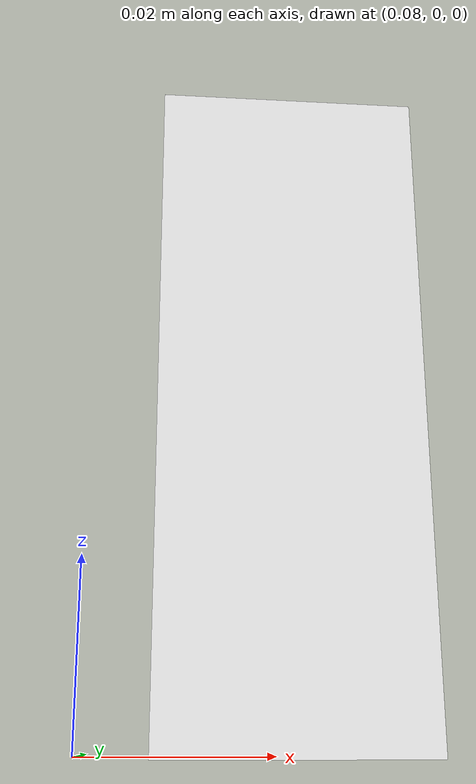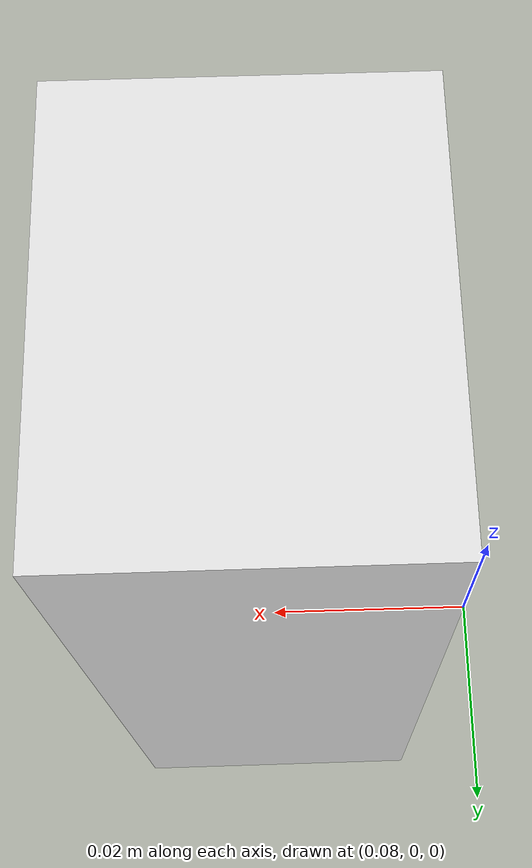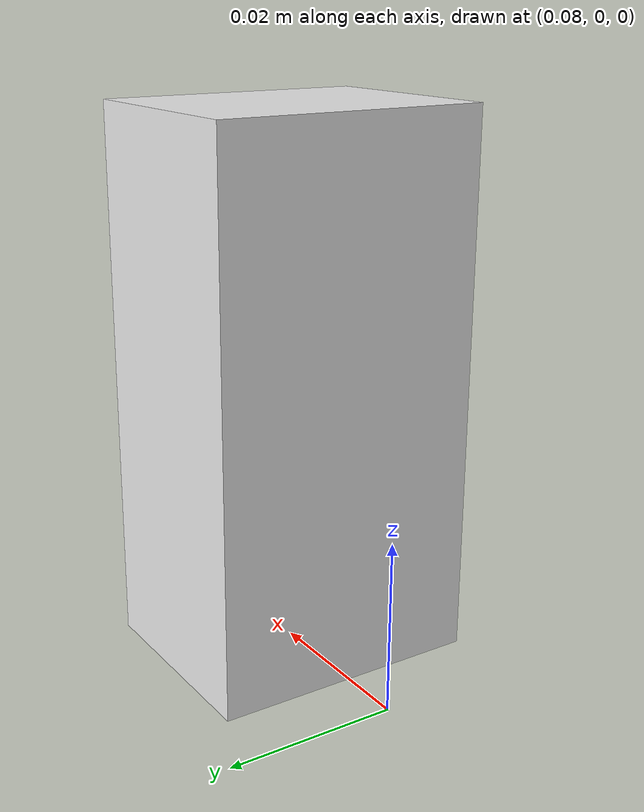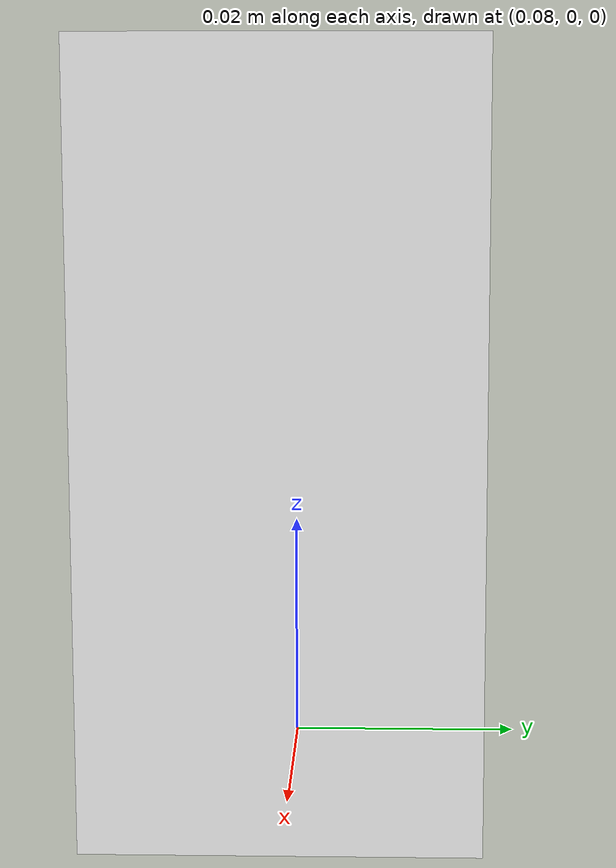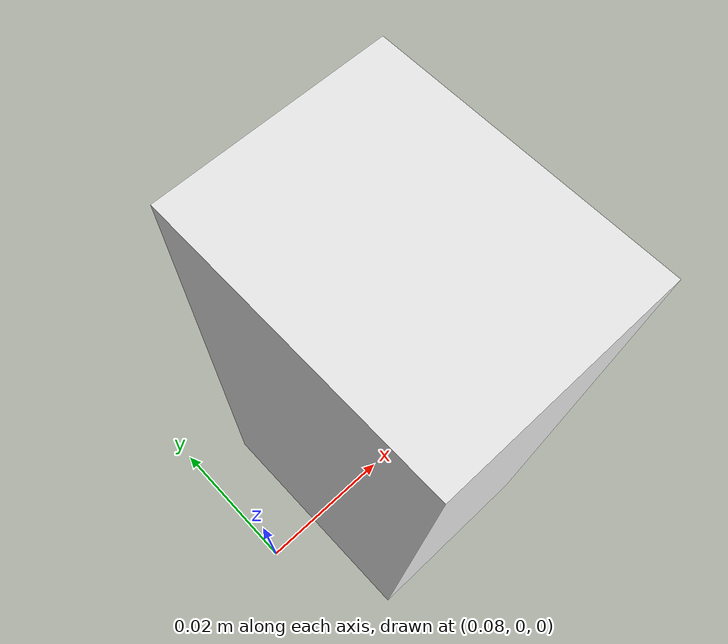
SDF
<?xml version='1.0'?>
<sdf version='1.6'>
  <model name='cube'>
    <link name='link'>
      <!-- Set the pose of the cube so that it sits on top of the inclined plane -->
      <!-- The z-value is set to half the height of the cube to place it resting on the plane -->
      <!-- Adjust x and y values to position the cube where we want it on the plane -->
      <pose>0.1 0.0 0.032 0 -0 0</pose>
        <!-- Inertial pose generally stays as is unless you have a specific reason to change it -->
      <self_collide>0</self_collide>
      <kinematic>0</kinematic>
      <enable_wind>0</enable_wind>
      <visual name='visual'>
        <geometry>
          <box>
            <size>0.025 0.032 0.064</size>
          </box>
        </geometry>
        <material>
          <script>
            <uri>file://media/materials/scripts/gazebo.material</uri>
            <name>Gazebo/White</name>
          </script>
        </material>
        <!-- Visual pose generally stays as is unless you have a specific reason to change it -->
        <pose>0 0 0 0 -0 0</pose>
        <transparency>0</transparency>
        <cast_shadows>1</cast_shadows>
      </visual>
      <collision name='collision'>
        <pose>0 0 0 0 -0 0</pose>
        <geometry>
          <box>
            <size>0.025 0.032 0.064</size>
          </box>
        </geometry>
        <surface>
          <friction>
            <ode>
              <mu>0.6</mu>
              <mu2>0.6</mu2>
            </ode>
          </friction>
          <!-- Other collision properties remain unchanged -->
        </surface>
      </collision>
    </link>
    <!-- The static tag should be '0' for movable objects like a stone -->
    <static>0</static>
    <allow_auto_disable>1</allow_auto_disable>
  </model>
</sdf>
